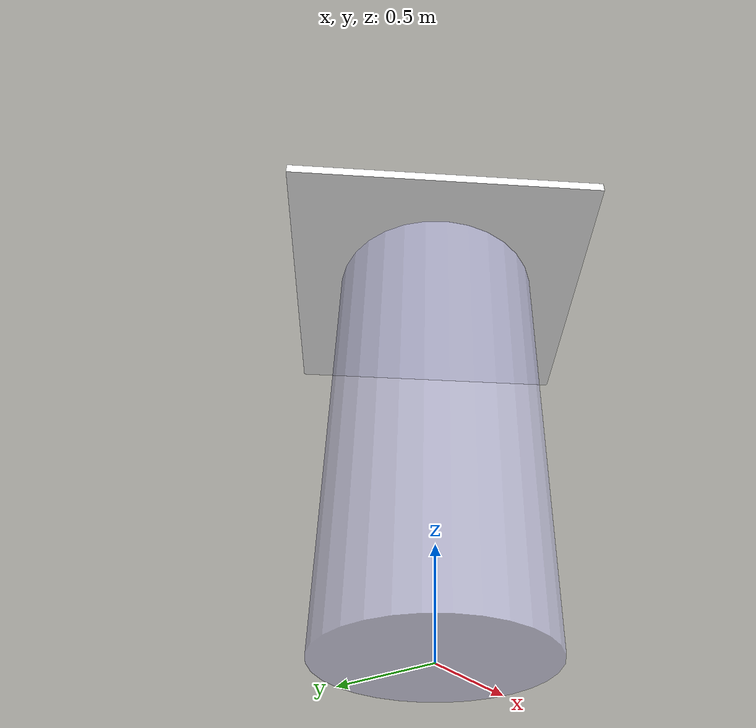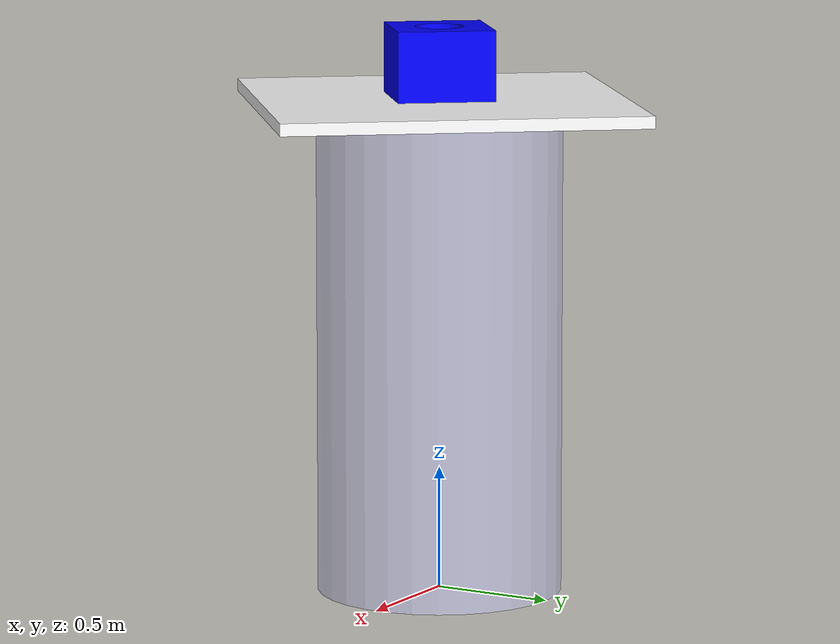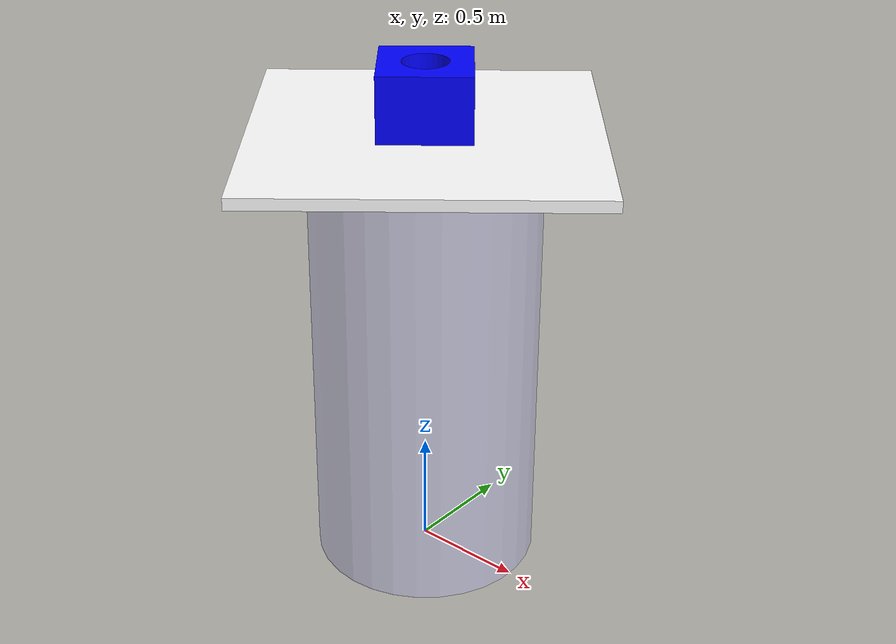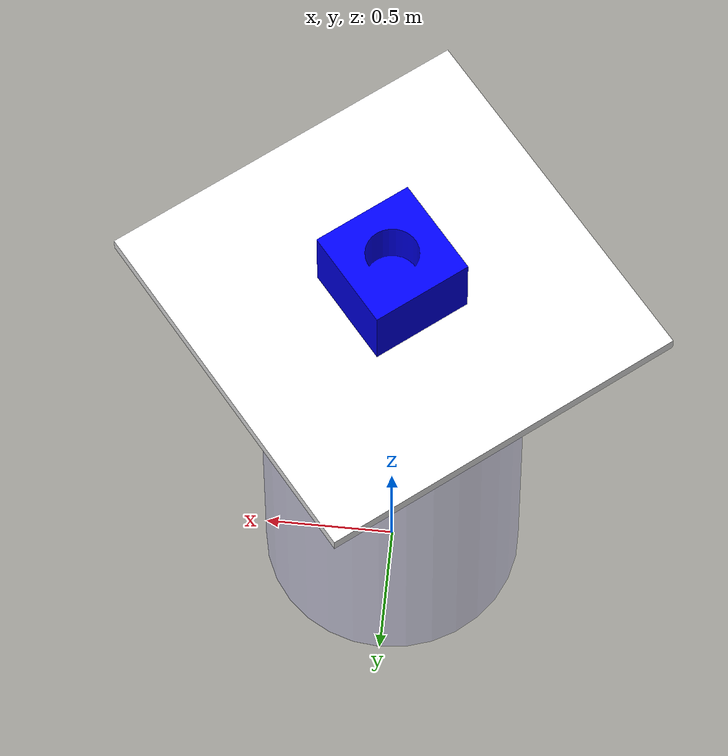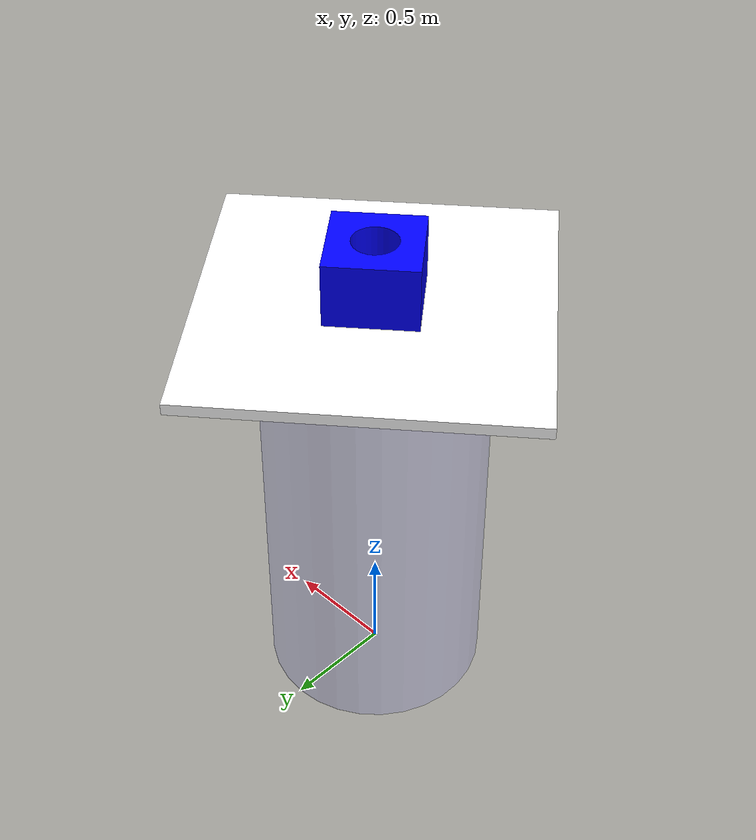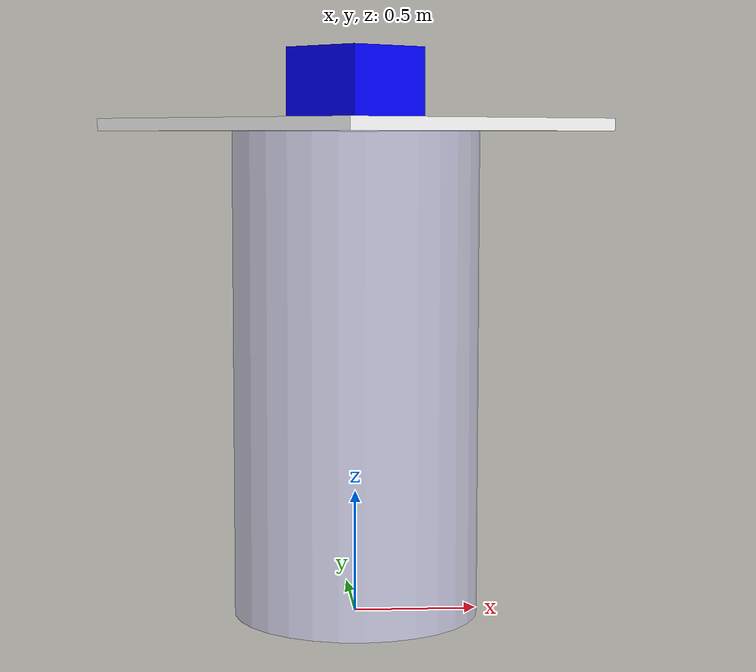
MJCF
<mujoco model="flower_final">
    <compiler angle="radian" meshdir="meshes"/>

    <asset>
        <mesh name="bottle_mesh" file="bottle_link.STL" scale="25 25 25"/>
        <mesh name="plate_mesh" file="plate_Link.STL" scale="25 25 25"/>
        <mesh name="lego_mesh" file="lego_Link.STL" scale="25 25 25"/>

        <material name="mat_bottle" rgba="0.8 0.8 1 0.5"/>
        <material name="mat_plate" rgba="1 1 1 1"/>
        <material name="mat_lego" rgba="0 0 1 1"/>

        <material name="mat_nectar" rgba="1 1 0.6 0.0"/>
    </asset>

    <worldbody>
        <body name="flower_base" pos="0 0 0">
            <geom type="mesh" mesh="bottle_mesh" material="mat_bottle"/>

            <body name="flower_plate" pos="0 0 1.975">
                <geom type="mesh" mesh="plate_mesh" material="mat_plate"/>

                <body name="flower_lego" pos="0 0 0">
                    <geom type="mesh" mesh="lego_mesh" material="mat_lego"/>

                    <geom name="nectar_collision"
                          type="sphere"
                          pos="0 0 0.25"
                          size="0.125"
                          material="mat_nectar"
                          contype="1"
                          conaffinity="1"/>
                </body>
            </body>
        </body>
    </worldbody>
</mujoco>
